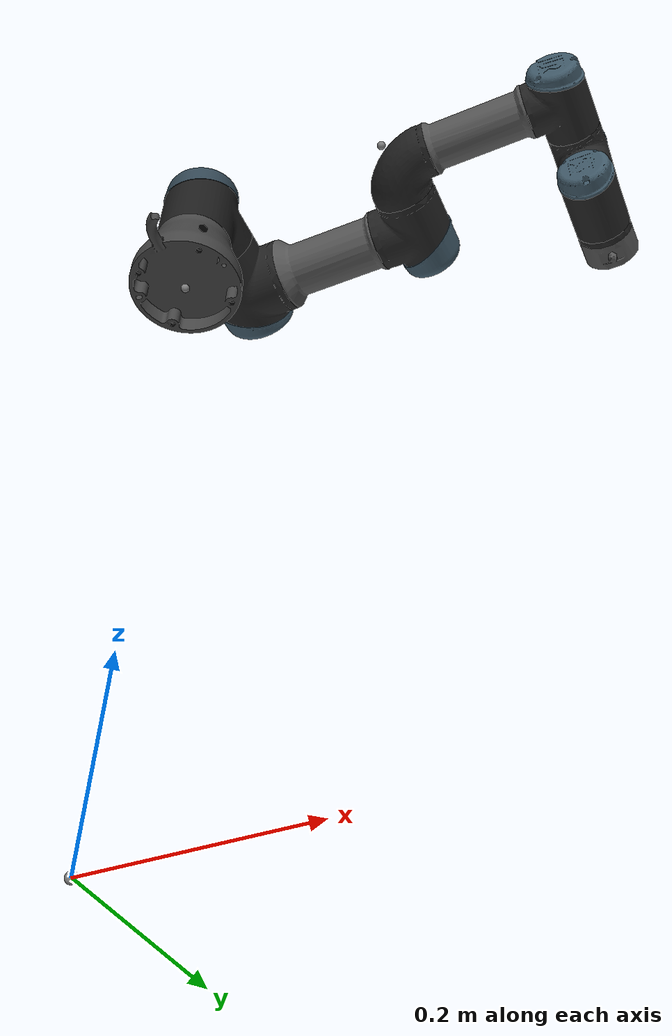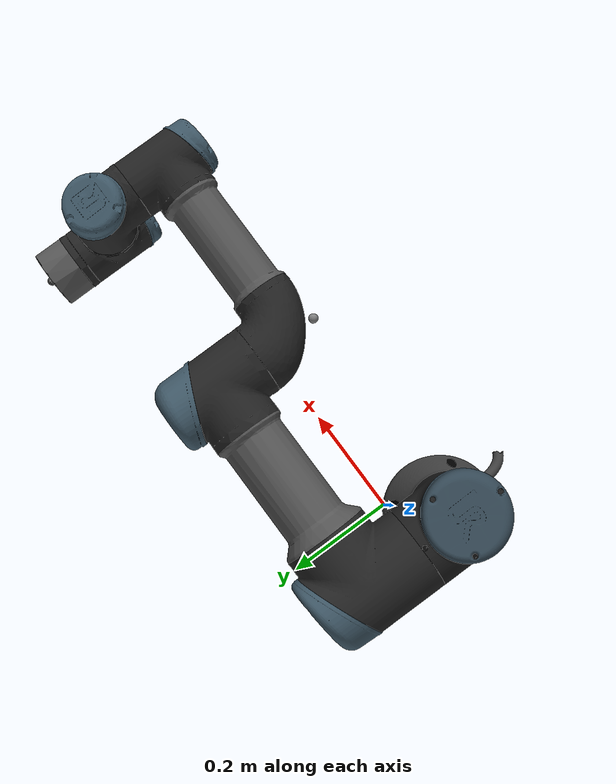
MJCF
<mujoco model="ur3">
  <compiler angle="radian" meshdir="assets/" texturedir="assets/" />
  <asset>
    <mesh file="full/base/base_0.obj" scale="1.0 1.0 1.0" />
    <mesh file="full/base/base_1.obj" scale="1.0 1.0 1.0" />
    <material name="material_base_0" specular="0.20000000000000004" shininess="1.0" rgba="0.27058824 0.27058824 0.27058824 1.0" />
    <material name="material_base_1" specular="0.20000000000000004" shininess="1.0" rgba="0.00000000 0.00000000 0.00000000 1.0" />
    <mesh file="full/shoulder/shoulder_0.obj" scale="1.0 1.0 1.0" />
    <mesh file="full/shoulder/shoulder_1.obj" scale="1.0 1.0 1.0" />
    <mesh file="full/shoulder/shoulder_2.obj" scale="1.0 1.0 1.0" />
    <material name="material_shoulder_0" specular="0.20000000000000004" shininess="1.0" rgba="0.11372549 0.11372549 0.11372549 1.0" />
    <material name="material_shoulder_1" specular="0.20000000000000004" shininess="1.0" rgba="0.20000000 0.27843137 0.32941176 1.0" />
    <material name="material_shoulder_2" specular="0.20000000000000004" shininess="1.0" rgba="0.03921569 0.03921569 0.03921569 1.0" />
    <mesh file="full/upperarm/upperarm_0.obj" scale="1.0 1.0 1.0" />
    <mesh file="full/upperarm/upperarm_1.obj" scale="1.0 1.0 1.0" />
    <mesh file="full/upperarm/upperarm_2.obj" scale="1.0 1.0 1.0" />
    <material name="material_upperarm_0" specular="0.20000000000000004" shininess="1.0" rgba="0.25098039 0.34901961 0.40784314 1.0" />
    <material name="material_upperarm_1" specular="0.20000000000000004" shininess="1.0" rgba="0.14117647 0.14117647 0.14117647 1.0" />
    <material name="material_upperarm_2" specular="0.20000000000000004" shininess="1.0" rgba="0.33725490 0.33725490 0.33725490 1.0" />
    <mesh file="full/forearm/forearm_0.obj" scale="1.0 1.0 1.0" />
    <mesh file="full/forearm/forearm_1.obj" scale="1.0 1.0 1.0" />
    <mesh file="full/forearm/forearm_2.obj" scale="1.0 1.0 1.0" />
    <material name="material_forearm_0" specular="0.20000000000000004" shininess="1.0" rgba="0.14117647 0.14117647 0.14117647 1.0" />
    <material name="material_forearm_1" specular="0.20000000000000004" shininess="1.0" rgba="0.33725490 0.33725490 0.33725490 1.0" />
    <material name="material_forearm_2" specular="0.20000000000000004" shininess="1.0" rgba="0.25098039 0.34901961 0.40784314 1.0" />
    <mesh file="full/wrist1/wrist1_0.obj" scale="1.0 1.0 1.0" />
    <mesh file="full/wrist1/wrist1_1.obj" scale="1.0 1.0 1.0" />
    <material name="material_wrist1_0" specular="0.20000000000000004" shininess="1.0" rgba="0.14117647 0.14117647 0.14117647 1.0" />
    <material name="material_wrist1_1" specular="0.20000000000000004" shininess="1.0" rgba="0.25098039 0.34901961 0.40784314 1.0" />
    <mesh file="full/wrist2/wrist2_0.obj" scale="1.0 1.0 1.0" />
    <mesh file="full/wrist2/wrist2_1.obj" scale="1.0 1.0 1.0" />
    <material name="material_wrist2_0" specular="0.20000000000000004" shininess="1.0" rgba="0.25098039 0.34901961 0.40784314 1.0" />
    <material name="material_wrist2_1" specular="0.20000000000000004" shininess="1.0" rgba="0.14117647 0.14117647 0.14117647 1.0" />
    <mesh file="full/wrist3/wrist3_0.obj" scale="1.0 1.0 1.0" />
    <mesh file="full/wrist3/wrist3_1.obj" scale="1.0 1.0 1.0" />
    <material name="material_wrist3_0" specular="0.20000000000000004" shininess="1.0" rgba="0.33725490 0.33725490 0.33725490 1.0" />
    <material name="material_wrist3_1" specular="0.20000000000000004" shininess="1.0" rgba="0.14117647 0.14117647 0.14117647 1.0" />
    <mesh name="collision_base" file="collision/base.stl" />
    <mesh name="collision_shoulder" file="collision/shoulder.stl" />
    <mesh name="collision_upperarm" file="collision/upperarm.stl" />
    <mesh name="collision_forearm" file="collision/forearm.stl" />
    <mesh name="collision_wrist1" file="collision/wrist1.stl" />
    <mesh name="collision_wrist2" file="collision/wrist2.stl" />
    <mesh name="collision_wrist3" file="collision/wrist3.stl" />
  </asset>
  <worldbody>
    <body name="shoulder_link" pos="0 0 0.866866" quat="5.5003e-06 0 0 1">
      <inertial pos="0 0 -0.02" mass="2" diaginertia="0.00809317 0.00809317 0.005625" />
      <joint name="shoulder_pan_joint" pos="0 0 0" axis="0 0 1" range="-6.28319 6.28319" actuatorfrcrange="-56 56" />
      <body name="upper_arm_link" pos="-6.40216e-05 0 0" quat="0.707054 0.70716 -2.86534e-05 -2.86491e-05">
        <inertial pos="-0.11365 0 0.1157" mass="3.42" diaginertia="0.0217285 0.0217285 0.00961875" />
        <joint name="shoulder_lift_joint" pos="0 0 0" axis="0 0 1" range="-6.28319 6.28319" actuatorfrcrange="-56 56" />
        <body name="forearm_link" pos="-0.243478 0 0" quat="-0.999998 0.00162607 0.000934464 7.9259e-06">
          <inertial pos="-0.16325 0 0.0238" mass="1.26" diaginertia="0.00654681 0.00654681 0.00354375" />
          <joint name="elbow_joint" pos="0 0 0" axis="0 0 1" range="-3.14159 3.14159" actuatorfrcrange="-28 28" />
          <body name="wrist_1_link" pos="-0.213088 -0.000407613 0.112201" quat="0.999998 0.00181643 0.00121637 -7.46116e-06">
            <inertial pos="0 -0.01 0" quat="0.5 0.5 -0.5 0.5" mass="0.8" diaginertia="0.00225 0.00161064 0.00161064" />
            <joint name="wrist_1_joint" pos="0 0 0" axis="0 0 1" range="-6.28319 6.28319" actuatorfrcrange="-12 12" />
            <body name="wrist_2_link" pos="-1.56832e-05 -0.0853101 -8.4296e-05" quat="0.706757 0.707456 1.15545e-05 1.15431e-05">
              <inertial pos="0 0.01 0" quat="0.5 0.5 -0.5 0.5" mass="0.8" diaginertia="0.00225 0.00157217 0.00157217" />
              <joint name="wrist_2_joint" pos="0 0 0" axis="0 0 1" range="-6.28319 6.28319" actuatorfrcrange="-12 12" />
              <body name="wrist_3_link" pos="1.06605e-05 0.0822687 -6.9566e-05" quat="0.706808 -0.707406 1.12586e-05 -1.12491e-05">
                <inertial pos="0 0 -0.02" quat="0.5 0.5 -0.5 0.5" mass="0.35" diaginertia="0.0001792 0.000136267 0.000136267" />
                <joint name="wrist_3_joint" pos="0 0 0" axis="0 0 1" actuatorfrcrange="-12 12" />
                <geom mesh="wrist3_0" material="material_wrist3_1" class="visual" pos="0 -0.002 -0.082" quat="0.707107 0.707107 0 0" />
                <geom mesh="wrist3_1" material="material_wrist3_0" class="visual" pos="0 -0.002 -0.082" quat="0.707107 0.707107 0 0" />
                <site name="wrist_3_link" pos="0 0 0" quat="1.0 0 0 0" />
                <site name="ft_frame" pos="0 0 0" quat="0 1.0 0 0" />
                <site name="flange" pos="0 0 0" quat="-0.5000000000000001 0.5 0.5000000000000001 0.49999999999999994" />
                <site name="tool0" pos="0 0 0" quat="1.0 0 0 0" />
                <geom name="wrist_3_link_collision" mesh="collision_wrist3" class="collision" pos="0 -0.002 -0.082" quat="0.707107 0.707107 0 0" />
              </body>
              <geom mesh="wrist2_0" material="material_wrist2_1" class="visual" pos="0 0 -0.083" quat="1 0 0 0" />
              <geom mesh="wrist2_1" material="material_wrist2_0" class="visual" pos="0 0 -0.083" quat="1 0 0 0" />
              <site name="wrist_2_link" pos="0 0 0" quat="1.0 0 0 0" />
              <geom name="wrist_2_link_collision" mesh="collision_wrist2" class="collision" pos="0 0 -0.083" quat="1 0 0 0" />
            </body>
            <geom mesh="wrist1_0" material="material_wrist1_1" class="visual" pos="0 0 -0.085" quat="0.707107 0.707107 0 0" />
            <geom mesh="wrist1_1" material="material_wrist1_0" class="visual" pos="0 0 -0.085" quat="0.707107 0.707107 0 0" />
            <site name="wrist_1_link" pos="0 0 0" quat="1.0 0 0 0" />
            <geom name="wrist_1_link_collision" mesh="collision_wrist1" class="collision" pos="0 0 -0.085" quat="0.707107 0.707107 0 0" />
          </body>
          <geom mesh="forearm_0" material="material_forearm_2" class="visual" pos="0 0 0.0275" quat="0.5 0.5 -0.5 -0.5" />
          <geom mesh="forearm_1" material="material_forearm_1" class="visual" pos="0 0 0.0275" quat="0.5 0.5 -0.5 -0.5" />
          <geom mesh="forearm_2" material="material_forearm_0" class="visual" pos="0 0 0.0275" quat="0.5 0.5 -0.5 -0.5" />
          <site name="forearm_link" pos="0 0 0" quat="1.0 0 0 0" />
          <geom name="forearm_link_collision" mesh="collision_forearm" class="collision" pos="0 0 0.0275" quat="0.5 0.5 -0.5 -0.5" />
        </body>
        <geom mesh="upperarm_0" material="material_upperarm_2" class="visual" pos="0 0 0.1198" quat="0.5 0.5 -0.5 -0.5" />
        <geom mesh="upperarm_1" material="material_upperarm_1" class="visual" pos="0 0 0.1198" quat="0.5 0.5 -0.5 -0.5" />
        <geom mesh="upperarm_2" material="material_upperarm_0" class="visual" pos="0 0 0.1198" quat="0.5 0.5 -0.5 -0.5" />
        <site name="upper_arm_link" pos="0 0 0" quat="1.0 0 0 0" />
        <geom name="upper_arm_link_collision" mesh="collision_upperarm" class="collision" pos="0 0 0.1198" quat="0.5 0.5 -0.5 -0.5" />
      </body>
      <geom mesh="shoulder_0" material="material_shoulder_2" class="visual" quat="0 0 0 1" />
      <geom mesh="shoulder_1" material="material_shoulder_1" class="visual" quat="0 0 0 1" />
      <geom mesh="shoulder_2" material="material_shoulder_0" class="visual" quat="0 0 0 1" />
      <site name="shoulder_link" pos="0 0 0" quat="1.0 0 0 0" />
      <geom name="shoulder_link_collision" mesh="collision_shoulder" class="collision" quat="0 0 0 1" />
    </body>
    <geom mesh="base_0" material="material_base_1" class="visual" pos="0 0 0.715" quat="-1 0 0 0" />
    <geom mesh="base_1" material="material_base_0" class="visual" pos="0 0 0.715" quat="-1 0 0 0" />
    <site name="world" pos="0 0 0" quat="1.0 0 0 0" />
    <site name="base_link" pos="0 0 0.715" quat="1.0 0 0 0" />
    <site name="base_link_inertia" pos="0 0 0.715" quat="0 0 0 1.0" />
    <site name="base" pos="0 0 0.715" quat="0 0 0 1.0" />
    <geom name="base_link_inertia_collision" mesh="collision_base" class="collision" pos="0 0 0.715" quat="-1 0 0 0" />
  </worldbody>
  <option timestep="0.002" integrator="implicitfast" gravity="0 0 -9.81" iterations="50" solver="Newton" />
  <default>
    <joint armature="0.01" damping="0.1" frictionloss="0.01" />
    <position dampratio="1.0" />
    <default class="visual">
      <geom type="mesh" contype="0" conaffinity="0" group="2" />
    </default>
    <default class="collision">
      <geom type="mesh" contype="1" conaffinity="2" group="3" rgba="0 0 0 0" friction="0.8 0.02 0.001" margin="0.001" />
    </default>
  </default>
  <actuator>
    <position name="shoulder_pan_joint" joint="shoulder_pan_joint" kp="1200" ctrlrange="-6.283185307179586 6.283185307179586" />
    <position name="shoulder_lift_joint" joint="shoulder_lift_joint" kp="1200" ctrlrange="-6.283185307179586 6.283185307179586" />
    <position name="elbow_joint" joint="elbow_joint" kp="900" ctrlrange="-3.141592653589793 3.141592653589793" />
    <position name="wrist_1_joint" joint="wrist_1_joint" kp="500" ctrlrange="-6.283185307179586 6.283185307179586" />
    <position name="wrist_2_joint" joint="wrist_2_joint" kp="400" ctrlrange="-6.283185307179586 6.283185307179586" />
    <position name="wrist_3_joint" joint="wrist_3_joint" kp="300" ctrlrange="-6.283185307179586 6.283185307179586" />
  </actuator>
  <keyframe>
    <key name="home" qpos="0 -1.5707963267948966 0 -1.5707963267948966 0 0" ctrl="0 -1.5707963267948966 0 -1.5707963267948966 0 0" />
    <key name="scan" qpos="0 -1.5707963267948966 1.5707963267948966 -2.356194490192345 -1.5707963267948966 0" ctrl="0 -1.5707963267948966 1.5707963267948966 -2.356194490192345 -1.5707963267948966 0" />
  </keyframe>
</mujoco>
